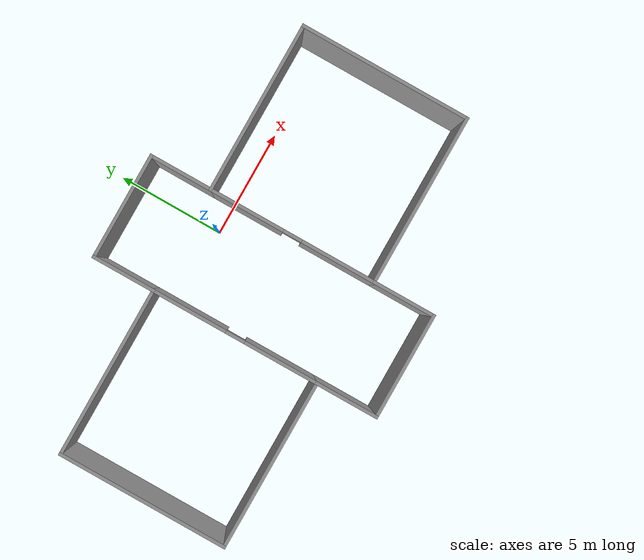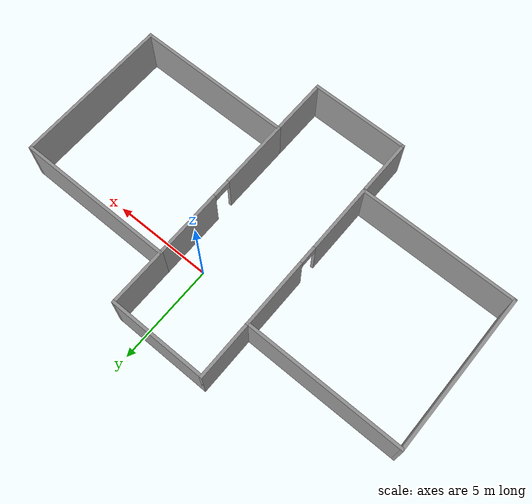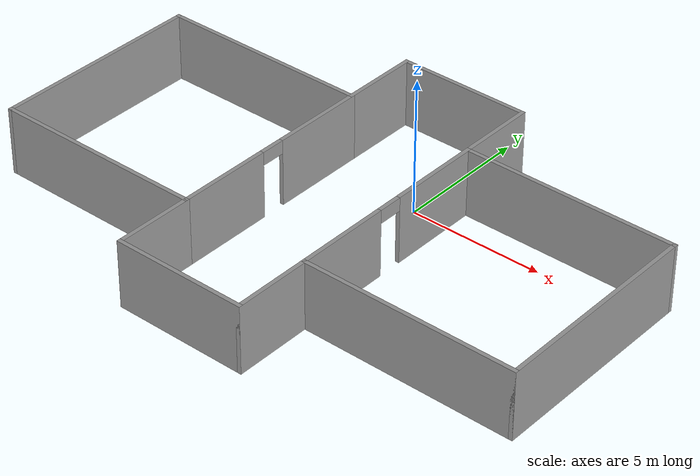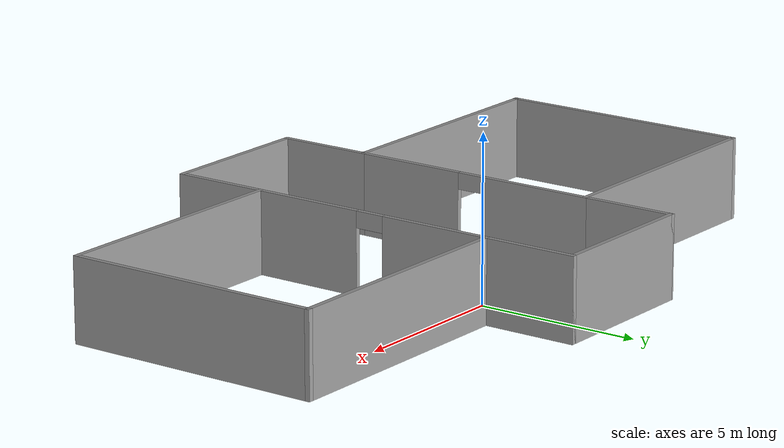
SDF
<?xml version='1.0'?>
<sdf version='1.6'>
  <model name='gazebo_SAGAT_prelim'>
    <pose frame=''>-1.11944 -2.89936 0 0 -0 0</pose>
    <link name='Wall_11'>
      <collision name='Wall_11_Collision'>
        <geometry>
          <box>
            <size>3 0.15 2.5</size>
          </box>
        </geometry>
        <pose frame=''>0 0 1.25 0 -0 0</pose>
      </collision>
      <visual name='Wall_11_Visual'>
        <pose frame=''>0 0 1.25 0 -0 0</pose>
        <geometry>
          <box>
            <size>3 0.15 2.5</size>
          </box>
        </geometry>
        <material>
          <script>
            <uri>file://media/materials/scripts/gazebo.material</uri>
            <name>Gazebo/Grey</name>
          </script>
          <ambient>1 1 1 1</ambient>
        </material>
        <meta>
          <layer>0</layer>
        </meta>
      </visual>
      <pose frame=''>-2.425 -5.35 0 0 -0 -1.5708</pose>
    </link>
    <link name='Wall_12'>
      <collision name='Wall_12_Collision'>
        <geometry>
          <box>
            <size>5 0.15 2.5</size>
          </box>
        </geometry>
        <pose frame=''>0 0 1.25 0 -0 0</pose>
      </collision>
      <visual name='Wall_12_Visual'>
        <pose frame=''>0 0 1.25 0 -0 0</pose>
        <geometry>
          <box>
            <size>5 0.15 2.5</size>
          </box>
        </geometry>
        <material>
          <script>
            <uri>file://media/materials/scripts/gazebo.material</uri>
            <name>Gazebo/Grey</name>
          </script>
          <ambient>1 1 1 1</ambient>
        </material>
        <meta>
          <layer>0</layer>
        </meta>
      </visual>
      <pose frame=''>-0 -6.775 0 0 -0 0</pose>
    </link>
    <link name='Wall_13'>
      <collision name='Wall_13_Collision'>
        <geometry>
          <box>
            <size>3 0.15 2.5</size>
          </box>
        </geometry>
        <pose frame=''>0 0 1.25 0 -0 0</pose>
      </collision>
      <visual name='Wall_13_Visual'>
        <pose frame=''>0 0 1.25 0 -0 0</pose>
        <geometry>
          <box>
            <size>3 0.15 2.5</size>
          </box>
        </geometry>
        <material>
          <script>
            <uri>file://media/materials/scripts/gazebo.material</uri>
            <name>Gazebo/Grey</name>
          </script>
          <ambient>1 1 1 1</ambient>
        </material>
        <meta>
          <layer>0</layer>
        </meta>
      </visual>
      <pose frame=''>2.425 -5.35 0 0 -0 1.5708</pose>
    </link>
    <link name='Wall_15'>
      <collision name='Wall_15_Collision'>
        <geometry>
          <box>
            <size>8 0.15 2.5</size>
          </box>
        </geometry>
        <pose frame=''>0 0 1.25 0 -0 0</pose>
      </collision>
      <visual name='Wall_15_Visual'>
        <pose frame=''>0 0 1.25 0 -0 0</pose>
        <geometry>
          <box>
            <size>8 0.15 2.5</size>
          </box>
        </geometry>
        <material>
          <script>
            <uri>file://media/materials/scripts/gazebo.material</uri>
            <name>Gazebo/Grey</name>
          </script>
          <ambient>1 1 1 1</ambient>
        </material>
        <meta>
          <layer>0</layer>
        </meta>
      </visual>
      <pose frame=''>6.35 -3.925 0 0 -0 0</pose>
    </link>
    <link name='Wall_16'>
      <collision name='Wall_16_Collision'>
        <geometry>
          <box>
            <size>8 0.15 2.5</size>
          </box>
        </geometry>
        <pose frame=''>0 0 1.25 0 -0 0</pose>
      </collision>
      <visual name='Wall_16_Visual'>
        <pose frame=''>0 0 1.25 0 -0 0</pose>
        <geometry>
          <box>
            <size>8 0.15 2.5</size>
          </box>
        </geometry>
        <material>
          <script>
            <uri>file://media/materials/scripts/gazebo.material</uri>
            <name>Gazebo/Grey</name>
          </script>
          <ambient>1 1 1 1</ambient>
        </material>
        <meta>
          <layer>0</layer>
        </meta>
      </visual>
      <pose frame=''>10.275 0 0 0 -0 1.5708</pose>
    </link>
    <link name='Wall_17'>
      <collision name='Wall_17_Collision'>
        <geometry>
          <box>
            <size>8 0.15 2.5</size>
          </box>
        </geometry>
        <pose frame=''>0 0 1.25 0 -0 0</pose>
      </collision>
      <visual name='Wall_17_Visual'>
        <pose frame=''>0 0 1.25 0 -0 0</pose>
        <geometry>
          <box>
            <size>8 0.15 2.5</size>
          </box>
        </geometry>
        <material>
          <script>
            <uri>file://media/materials/scripts/gazebo.material</uri>
            <name>Gazebo/Grey</name>
          </script>
          <ambient>1 1 1 1</ambient>
        </material>
        <meta>
          <layer>0</layer>
        </meta>
      </visual>
      <pose frame=''>6.35 3.925 0 0 -0 3.14159</pose>
    </link>
    <link name='Wall_18'>
      <pose frame=''>2.425 0 0 0 -0 -1.5708</pose>
      <visual name='Wall_18_Visual_0'>
        <pose frame=''>-2.22426 0 1.25 0 -0 0</pose>
        <geometry>
          <box>
            <size>3.55147 0.15 2.5</size>
          </box>
        </geometry>
        <material>
          <script>
            <uri>file://media/materials/scripts/gazebo.material</uri>
            <name>Gazebo/Grey</name>
          </script>
          <ambient>1 1 1 1</ambient>
        </material>
        <meta>
          <layer>0</layer>
        </meta>
      </visual>
      <collision name='Wall_18_Collision_0'>
        <geometry>
          <box>
            <size>3.55147 0.15 2.5</size>
          </box>
        </geometry>
        <pose frame=''>-2.22426 0 1.25 0 -0 0</pose>
      </collision>
      <visual name='Wall_18_Visual_1'>
        <pose frame=''>2.22574 0 1.25 0 -0 0</pose>
        <geometry>
          <box>
            <size>3.54853 0.15 2.5</size>
          </box>
        </geometry>
        <material>
          <script>
            <uri>file://media/materials/scripts/gazebo.material</uri>
            <name>Gazebo/Grey</name>
          </script>
          <ambient>1 1 1 1</ambient>
        </material>
        <meta>
          <layer>0</layer>
        </meta>
      </visual>
      <collision name='Wall_18_Collision_1'>
        <geometry>
          <box>
            <size>3.54853 0.15 2.5</size>
          </box>
        </geometry>
        <pose frame=''>2.22574 0 1.25 0 -0 0</pose>
      </collision>
      <visual name='Wall_18_Visual_2'>
        <pose frame=''>0.001474 0 2.25 0 -0 0</pose>
        <geometry>
          <box>
            <size>0.9 0.15 0.5</size>
          </box>
        </geometry>
        <material>
          <script>
            <uri>file://media/materials/scripts/gazebo.material</uri>
            <name>Gazebo/Grey</name>
          </script>
          <ambient>1 1 1 1</ambient>
        </material>
        <meta>
          <layer>0</layer>
        </meta>
      </visual>
      <collision name='Wall_18_Collision_2'>
        <geometry>
          <box>
            <size>0.9 0.15 0.5</size>
          </box>
        </geometry>
        <pose frame=''>0.001474 0 2.25 0 -0 0</pose>
      </collision>
    </link>
    <link name='Wall_25'>
      <collision name='Wall_25_Collision'>
        <geometry>
          <box>
            <size>3 0.15 2.5</size>
          </box>
        </geometry>
        <pose frame=''>0 0 1.25 0 -0 0</pose>
      </collision>
      <visual name='Wall_25_Visual'>
        <pose frame=''>0 0 1.25 0 -0 0</pose>
        <geometry>
          <box>
            <size>3 0.15 2.5</size>
          </box>
        </geometry>
        <material>
          <script>
            <uri>file://media/materials/scripts/gazebo.material</uri>
            <name>Gazebo/Grey</name>
          </script>
          <ambient>1 1 1 1</ambient>
        </material>
        <meta>
          <layer>0</layer>
        </meta>
      </visual>
      <pose frame=''>-2.425 5.35 0 0 -0 1.5708</pose>
    </link>
    <link name='Wall_26'>
      <collision name='Wall_26_Collision'>
        <geometry>
          <box>
            <size>5 0.15 2.5</size>
          </box>
        </geometry>
        <pose frame=''>0 0 1.25 0 -0 0</pose>
      </collision>
      <visual name='Wall_26_Visual'>
        <pose frame=''>0 0 1.25 0 -0 0</pose>
        <geometry>
          <box>
            <size>5 0.15 2.5</size>
          </box>
        </geometry>
        <material>
          <script>
            <uri>file://media/materials/scripts/gazebo.material</uri>
            <name>Gazebo/Grey</name>
          </script>
          <ambient>1 1 1 1</ambient>
        </material>
        <meta>
          <layer>0</layer>
        </meta>
      </visual>
      <pose frame=''>-0 6.775 0 0 -0 0</pose>
    </link>
    <link name='Wall_27'>
      <collision name='Wall_27_Collision'>
        <geometry>
          <box>
            <size>3 0.15 2.5</size>
          </box>
        </geometry>
        <pose frame=''>0 0 1.25 0 -0 0</pose>
      </collision>
      <visual name='Wall_27_Visual'>
        <pose frame=''>0 0 1.25 0 -0 0</pose>
        <geometry>
          <box>
            <size>3 0.15 2.5</size>
          </box>
        </geometry>
        <material>
          <script>
            <uri>file://media/materials/scripts/gazebo.material</uri>
            <name>Gazebo/Grey</name>
          </script>
          <ambient>1 1 1 1</ambient>
        </material>
        <meta>
          <layer>0</layer>
        </meta>
      </visual>
      <pose frame=''>2.425 5.35 0 0 -0 -1.5708</pose>
    </link>
    <link name='Wall_6'>
      <collision name='Wall_6_Collision'>
        <geometry>
          <box>
            <size>8 0.15 2.5</size>
          </box>
        </geometry>
        <pose frame=''>0 0 1.25 0 -0 0</pose>
      </collision>
      <visual name='Wall_6_Visual'>
        <pose frame=''>0 0 1.25 0 -0 0</pose>
        <geometry>
          <box>
            <size>8 0.15 2.5</size>
          </box>
        </geometry>
        <material>
          <script>
            <uri>file://media/materials/scripts/gazebo.material</uri>
            <name>Gazebo/Grey</name>
          </script>
          <ambient>1 1 1 1</ambient>
        </material>
        <meta>
          <layer>0</layer>
        </meta>
      </visual>
      <pose frame=''>-10.275 0 0 0 -0 1.5708</pose>
    </link>
    <link name='Wall_7'>
      <collision name='Wall_7_Collision'>
        <geometry>
          <box>
            <size>8 0.15 2.5</size>
          </box>
        </geometry>
        <pose frame=''>0 0 1.25 0 -0 0</pose>
      </collision>
      <visual name='Wall_7_Visual'>
        <pose frame=''>0 0 1.25 0 -0 0</pose>
        <geometry>
          <box>
            <size>8 0.15 2.5</size>
          </box>
        </geometry>
        <material>
          <script>
            <uri>file://media/materials/scripts/gazebo.material</uri>
            <name>Gazebo/Grey</name>
          </script>
          <ambient>1 1 1 1</ambient>
        </material>
        <meta>
          <layer>0</layer>
        </meta>
      </visual>
      <pose frame=''>-6.35 3.925 0 0 -0 0</pose>
    </link>
    <link name='Wall_8'>
      <pose frame=''>-2.425 0 0 0 -0 -1.5708</pose>
      <visual name='Wall_8_Visual_0'>
        <pose frame=''>-2.22426 0 1.25 0 -0 0</pose>
        <geometry>
          <box>
            <size>3.55147 0.15 2.5</size>
          </box>
        </geometry>
        <material>
          <script>
            <uri>file://media/materials/scripts/gazebo.material</uri>
            <name>Gazebo/Grey</name>
          </script>
          <ambient>1 1 1 1</ambient>
        </material>
        <meta>
          <layer>0</layer>
        </meta>
      </visual>
      <collision name='Wall_8_Collision_0'>
        <geometry>
          <box>
            <size>3.55147 0.15 2.5</size>
          </box>
        </geometry>
        <pose frame=''>-2.22426 0 1.25 0 -0 0</pose>
      </collision>
      <visual name='Wall_8_Visual_1'>
        <pose frame=''>2.22574 0 1.25 0 -0 0</pose>
        <geometry>
          <box>
            <size>3.54853 0.15 2.5</size>
          </box>
        </geometry>
        <material>
          <script>
            <uri>file://media/materials/scripts/gazebo.material</uri>
            <name>Gazebo/Grey</name>
          </script>
          <ambient>1 1 1 1</ambient>
        </material>
        <meta>
          <layer>0</layer>
        </meta>
      </visual>
      <collision name='Wall_8_Collision_1'>
        <geometry>
          <box>
            <size>3.54853 0.15 2.5</size>
          </box>
        </geometry>
        <pose frame=''>2.22574 0 1.25 0 -0 0</pose>
      </collision>
      <visual name='Wall_8_Visual_2'>
        <pose frame=''>0.001474 0 2.25 0 -0 0</pose>
        <geometry>
          <box>
            <size>0.9 0.15 0.5</size>
          </box>
        </geometry>
        <material>
          <script>
            <uri>file://media/materials/scripts/gazebo.material</uri>
            <name>Gazebo/Grey</name>
          </script>
          <ambient>1 1 1 1</ambient>
        </material>
        <meta>
          <layer>0</layer>
        </meta>
      </visual>
      <collision name='Wall_8_Collision_2'>
        <geometry>
          <box>
            <size>0.9 0.15 0.5</size>
          </box>
        </geometry>
        <pose frame=''>0.001474 0 2.25 0 -0 0</pose>
      </collision>
    </link>
    <link name='Wall_9'>
      <collision name='Wall_9_Collision'>
        <geometry>
          <box>
            <size>8 0.15 2.5</size>
          </box>
        </geometry>
        <pose frame=''>0 0 1.25 0 -0 0</pose>
      </collision>
      <visual name='Wall_9_Visual'>
        <pose frame=''>0 0 1.25 0 -0 0</pose>
        <geometry>
          <box>
            <size>8 0.15 2.5</size>
          </box>
        </geometry>
        <material>
          <script>
            <uri>file://media/materials/scripts/gazebo.material</uri>
            <name>Gazebo/Grey</name>
          </script>
          <ambient>1 1 1 1</ambient>
        </material>
        <meta>
          <layer>0</layer>
        </meta>
      </visual>
      <pose frame=''>-6.35 -3.925 0 0 -0 3.14159</pose>
    </link>
    <static>1</static>
  </model>
</sdf>
